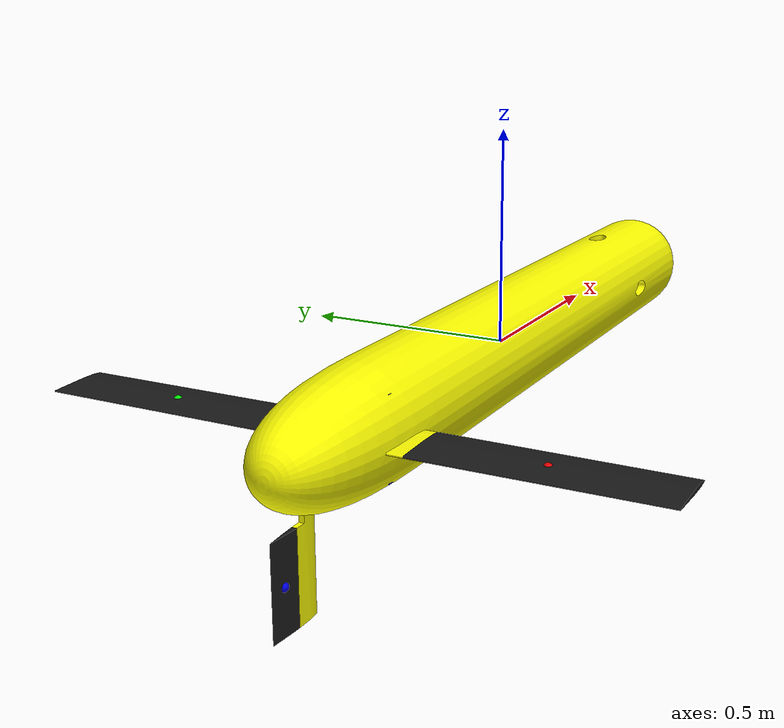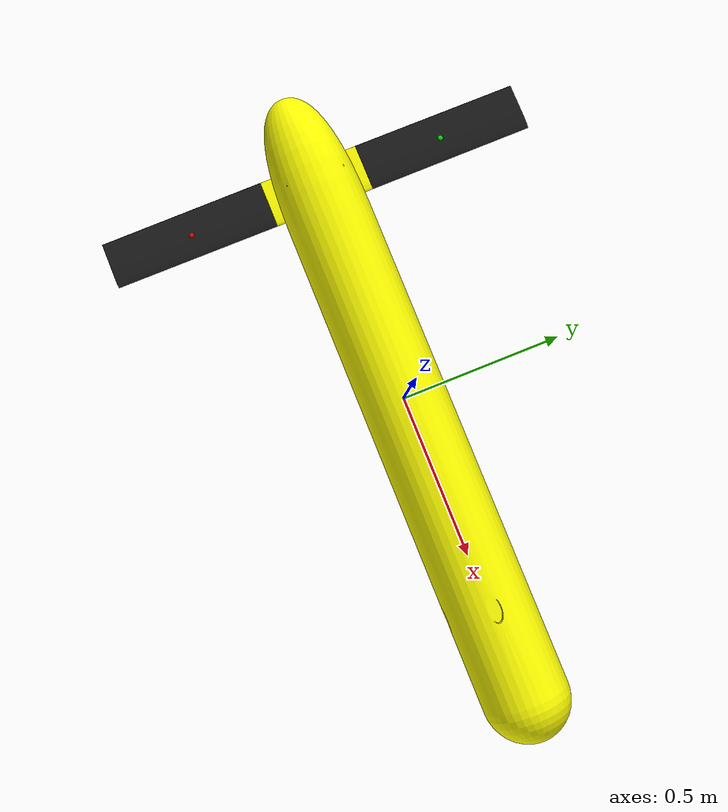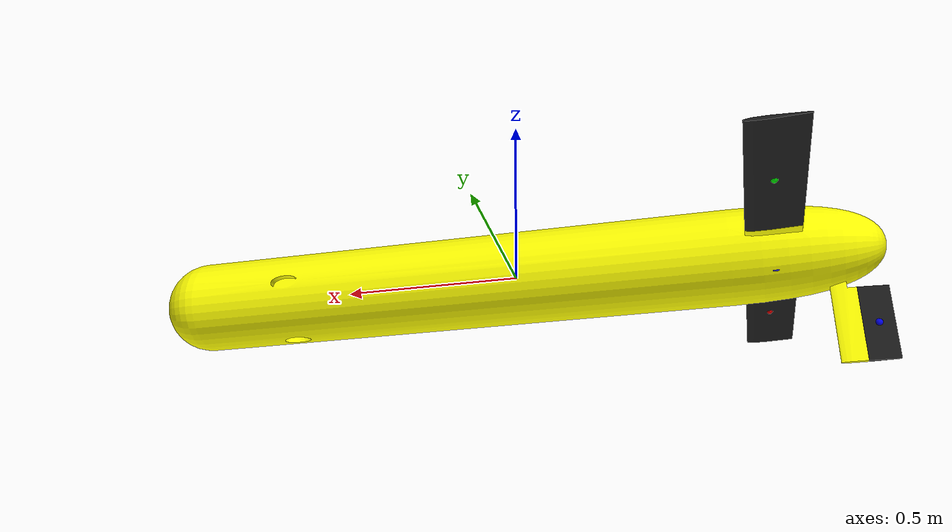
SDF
<?xml version="1.0"?>
<sdf version="1.7">
  <model name="glider_nautilus">

    <static>false</static>

    <!-- BASE LINK -->

    <link name="base_link">
      <inertial>

        <pose>0.066 0 0.043 0 0 0</pose>

        <inertia>
          <ixx>0.569665165</ixx>
          <ixy>0.014586839</ixy>
          <ixz>-0.135434148</ixz>
          <iyy>7.792</iyy>
          <iyz>0.003389589</iyz>
          <izz>7.738</izz>
        </inertia>

        <!-- Added mass: analytic estimate. -->
        <fluid_added_mass>
          <xx>5.30023995</xx>
          <yy>98.529516</yy>
          <zz>110.543023</zz>
          <pp>1.46943124</pp>
          <qq>20.2676439</qq>
          <rr>16.1139805</rr>
        </fluid_added_mass>

        <!-- Mass from the Technical_Details spreadsheet; excludes
             movable ACU masses and the oil mass. -->

        <mass>44.637</mass>

      </inertial>

      <visual name="base_link_visual">
        <pose>0 0 0 0 0 0</pose>
        <geometry>
          <mesh>
            <uri>model://meshes/glider_nautilus/nautilus_glider_nw_v04.dae</uri>
          </mesh>
        </geometry>
        <material>
          <ambient>0.7 0. 0 0.5</ambient>
          <diffuse>1 1 0 1</diffuse>
          <specular>0.7 0.7 0 0.5</specular>
        </material>
      </visual>

      <collision name="base_link_collision">
        <pose>0.0 0 0 0 0 0</pose>
        <geometry>
          <box>
            <!-- x y and z dimensions of the box (refers to base_link coordinates) -->
            <size>1.007723 0.232517 0.232517</size>
          </box>
        </geometry>
      </collision>

      <!-- Box visualising where the bouyant volume of the
           hull is. Not functional, simply an optional sanity check.
           Uncomment to show. -->

    </link>

    <plugin
      filename="gz-sim-hydrodynamics-system"
      name="gz::sim::systems::Hydrodynamics">
      <link_name>base_link</link_name>
      <!-- Fresh water (2026-06-24 lake test environment). -->
      <water_density>1000</water_density>
      <xDotU>0</xDotU>
      <yDotV>0</yDotV>
      <zDotW>0</zDotW>
      <kDotP>0</kDotP>
      <mDotQ>0</mDotQ>
      <nDotR>0</nDotR>

      <!-- Linear drag diagonals. zW: lake-fitted (2026-06-24 heave
           calibration). xU/yV/kP/mQ/nR: strip-theory estimates. -->
      <xU>-108</xU>
      <yV>-8</yV>
      <zW>-52.2</zW>
      <kP>-13</kP>
      <mQ>-32</mQ>
      <nR>-20</nR>
      <!-- cross terms -->

      <!-- Quadratic drag diagonals. zWabsW: lake-fitted with zW
           (2026-06-24 heave calibration); the rest are zero. -->
      <xUabsU>0</xUabsU>
      <yVabsV>0</yVabsV>
      <zWabsW>-436.7</zWabsW>
      <kPabsP>0</kPabsP>
      <mQabsQ>0</mQabsQ>
      <nRabsR>0</nRabsR>
    </plugin>

    <plugin
      filename="HeaveAugmentPlugin"
      name="dave_gz_model_plugins::HeaveAugmentPlugin">
      <link_name>base_link</link_name>
      <zW>-52.2</zW>
      <zWabsW>-436.7</zWabsW>
      <ascent_drag_relief>
        <retain_fraction>0.66</retain_fraction>
        <min_ascent_speed>0.01</min_ascent_speed>
      </ascent_drag_relief>
      <entry_momentum>
        <peak_speed>0.205</peak_speed>
        <rise_time>20</rise_time>
        <decay_time>25</decay_time>
        <trigger_depth>0.3</trigger_depth>
        <trigger_speed>0.03</trigger_speed>
        <trigger_hold>2</trigger_hold>
        <rearm_speed>0.01</rearm_speed>
        <rearm_hold>5</rearm_hold>
        <servo_gain>1000</servo_gain>
        <max_force>60</max_force>
      </entry_momentum>
    </plugin>

    <!-- TRIMMING BOW -->

    <!-- A rigidly attached link providing the additional buoyancy
         or mass needed to make the glider float correctly -->

    <joint name="trimming_bow_joint" type="fixed">
      <pose>0.65 0 0 0 0 0</pose>
      <parent>base_link</parent>
      <child>trimming_bow</child>
    </joint>

    <link name="trimming_bow">

      <pose>0.65 0 0 0 0 0</pose>

      <inertial>
        <mass>3.157</mass>
      </inertial>

      <collision name="bow_trimming_foam_collision">
        <pose>0 0 0 0 0 0</pose>
        <geometry>
          <box>
            <size>0.065 0.18 0.18</size>
          </box>
        </geometry>
      </collision>

      <visual name="bow_trimming_foam_visual">
        <geometry>
          <box>
            <size>0.065 0.15 0.15</size>
          </box>
        </geometry>
        <material>
          <ambient>0 0 1 0.8</ambient>
          <diffuse>0 0 1 0.8</diffuse>
          <specular>0 0 1 0.8</specular>
        </material>
      </visual>

    </link>

    <!-- TRIMMING STERN -->

    <!-- A rigidly attached link providing the additional buoyancy
         or mass needed to make the glider float correctly. Uncomment
         and add mass / a collision geometry to activate. -->

    <joint name="trimming_stern_joint" type="fixed">
      <pose>-0.7 0 0 0 0 0</pose>
      <parent>base_link</parent>
      <child>trimming_stern</child>
    </joint>

    <link name="trimming_stern">

      <collision name="stern_trimming_foam_collision">
        <geometry>
          <box>
            <size>0.015 0.18 0.18</size>
          </box>
        </geometry>
      </collision>

      <pose>-0.7 0 0 0 0 0</pose>

      <inertial>
        <!-- Stern half of the pitch-trim pair — see the mass-budget
             note on trimming_bow. -->
        <mass>0.2765</mass>
      </inertial>

      <visual name="stern_trimming_foam_visual">
        <geometry>
          <box>
            <size>0.015 0.18 0.18</size>
          </box>
        </geometry>
        <material>
          <ambient>0 0 1 0.8</ambient>
          <diffuse>0 0 1 0.8</diffuse>
          <specular>0 0 1 0.8</specular>
        </material>
      </visual>

    </link>

    <!-- LEFT FIN -->

    <link name="LeftFin_link">
      <!-- Frame for aerodynamic forces of left wing.
           For now simply rest at base link -->

      <visual name="LeftFin_visual">
        <pose>0 0 0 0 0 0</pose>
        <geometry>
          <mesh>
            <uri>model://meshes/glider_nautilus/nautilus_glider_wing_l_v04.dae</uri>
          </mesh>
        </geometry>
        <material>
          <ambient>0.1 0.1 0.1 0.9</ambient>
          <diffuse>0.1 0.1 0.1 1</diffuse>
          <specular>0 0 0 0.9</specular>
        </material>
      </visual>

      <!-- The following visual element is for a sanity check on the
           centre of pressure passed to the lift drag plugin. Insert
           the same position in the pose tag. -->
      <visual name="centre_of_pressure_marker">
        <pose>-0.7 -0.408 0 0 0 0</pose>
        <geometry>
          <sphere>
            <radius>0.01</radius>
          </sphere>
        </geometry>
        <material>
          <ambient>0.9 0 0 0.9</ambient>
          <diffuse>0.9 0 0 0.9</diffuse>
          <specular>0 0 0 0.9</specular>
        </material>
      </visual>

    </link>

    <joint name="LeftFin_joint" type="fixed">
      <pose>0 0 0 0 0 0</pose>
      <parent>base_link</parent>
      <child>LeftFin_link</child>
    </joint>

    <plugin
      filename="gz-sim-lift-drag-system"
      name="gz::sim::systems::LiftDrag">
      <air_density>1000</air_density>
      <cla>4.13</cla>
      <cla_stall>-1.1</cla_stall>
      <cda>0.2</cda>
      <cda_stall>0.03</cda_stall>
      <alpha_stall>0.17</alpha_stall>
      <a0>0</a0>
      <area>0.0725</area>
      <upward>0 0 -1</upward>
      <forward>1 0 0</forward>
      <link_name>LeftFin_link</link_name>
      <!-- cp determines the centre of pressure in the link frame,
           i.e. wher the aerodynamic forces are applied -->
      <cp>-0.7 -0.408 0</cp>
    </plugin>

    <!-- RIGHT FIN -->

    <link name="RightFin_link">

      <visual name="RightFin_visual">
        <pose>0 0 0 0 0 0</pose>
        <geometry>
          <mesh>
            <uri>model://meshes/glider_nautilus/nautilus_glider_wing_r_v04.dae</uri>
          </mesh>
        </geometry>
        <material>
          <ambient>0.1 0.1 0.1 0.9</ambient>
          <diffuse>0.1 0.1 0.1 1</diffuse>
          <specular>0 0 0 0.9</specular>
        </material>
      </visual>

      <!-- The following visual element is for a sanity check on the
           centre of pressure passed to the lift drag plugin. Insert
           the same position in the pose tag. -->
      <visual name="centre_of_pressure_marker">
        <pose>-0.7 0.408  0 0 0 0</pose>
        <geometry>
          <sphere>
            <radius>0.01</radius>
          </sphere>
        </geometry>
        <material>
          <ambient>0 0.9 0 0.9</ambient>
          <diffuse>0 0.9 0 0.9</diffuse>
          <specular>0 0 0 0.9</specular>
        </material>
      </visual>

    </link>

    <joint name="RightFin_joint" type="fixed">
      <pose>0 0 0 0 0 0</pose>
      <parent>base_link</parent>
      <child>RightFin_link</child>
    </joint>

    <plugin
      filename="gz-sim-lift-drag-system"
      name="gz::sim::systems::LiftDrag">
      <air_density>1000</air_density>
      <cla>4.13</cla>
      <cla_stall>-1.1</cla_stall>
      <cda>0.2</cda>
      <cda_stall>0.03</cda_stall>
      <alpha_stall>0.17</alpha_stall>
      <a0>0</a0>
      <area>0.0725</area>
      <upward>0 0 -1</upward>
      <forward>1 0 0</forward>
      <link_name>RightFin_link</link_name>
      <!-- cp determines the centre of pressure in the link frame,
           i.e. wher the aerodynamic forces are applied -->
      <cp>-0.7 0.408  0</cp>
    </plugin>

    <!-- TOP RUDDER -->

    <!-- Top rudder should be movable. First define this joint that
         the rudder's axis of rotation passes through -->

    <joint name="TopRudder_joint" type="fixed">
      <pose relative_to="base_link">-0.899156 0 -0.119 0 0 0</pose>
      <parent>base_link</parent>
      <child>TopRudder_link</child>
    </joint>

    <link name="TopRudder_link">

      <!-- Link (ie rudder body) has its coordinate system right
           on the rudder joint -->

      <pose relative_to="TopRudder_joint">0 0 0 0 0 0</pose>

      <!-- Integrates the mesh files of the rudder -->
      <visual name="Rudder_visual">
        <geometry>
          <mesh>
            <uri>model://meshes/glider_nautilus/nautilus_glider_rudder_v05.dae</uri>
          </mesh>
        </geometry>
        <material>
          <ambient>0.1 0.1 0.1 0.9</ambient>
          <diffuse>0.1 0.1 0.1 1</diffuse>
          <specular>0 0 0 0.9</specular>
        </material>
      </visual>

      <!-- The following visual element is for a sanity check on the
           centre of pressure passed to the lift drag plugin. Insert
           the same position in the pose tag. -->
      <visual name="centre_of_pressure_marker">
        <!-- Pose of the 'centre of pressure' in the local coordinates
             of the TopRudder_link, also a NED coordinate system -->
        <pose relative_to="TopRudder_link">-0.04 0 -0.1 0 0 0</pose>
        <geometry>
          <sphere>
            <radius>0.01</radius>
          </sphere>
        </geometry>
        <material>
          <ambient>0 0 0.9 0.9</ambient>
          <diffuse>0 0 0.9 0.9</diffuse>
          <specular>0 0 0 0.9</specular>
        </material>
      </visual>

    </link>

    <!-- Started to implement a movable rudder -->

    <!-- 0.5 was the initial set point of the PID position
     controller for the rudder -->

    <plugin
      filename="gz-sim-joint-state-publisher-system"
      name="gz::sim::systems::JointStatePublisher">
      <joint_name>TopRudder_joint</joint_name>
      <update_rate>2</update_rate>
    </plugin>

    <plugin
      filename="gz-sim-lift-drag-system"
      name="gz::sim::systems::LiftDrag">
      <air_density>1000</air_density>
      <cla>4.13</cla>
      <cla_stall>-1.1</cla_stall>
      <cda>0.2</cda>
      <cda_stall>0.03</cda_stall>
      <alpha_stall>0.17</alpha_stall>
      <a0>0</a0>
      <area>0.0244</area>
      <upward>0 1 0</upward>
      <forward>1 0 0</forward>
      <link_name>TopRudder_link</link_name>
      <cp>-0.04 0 -0.1</cp>
    </plugin>

    <!-- BLADDER -->

    <link name="bladder_link">
      <!-- Pose of bladder link in base link frame-->
      <pose>0.6 0 0 0 0 0</pose>
      <!-- Explicit mass (was the implicit SDF default of 1.0 kg); the
           second centerline trim knob — see the mass-budget note on
           trimming_bow. -->
      <inertial>
        <mass>0.001</mass>
      </inertial>
      <visual name="bladder_link_visual">
        <geometry>
          <sphere>
            <radius>0.05</radius>
          </sphere>
        </geometry>
        <material>
          <ambient>0 0 1 1</ambient>
          <diffuse>0 0 1 0.5</diffuse>
          <specular>0 0 1 0.5</specular>
        </material>
      </visual>
    </link>

    <joint name="bladder_joint" type="fixed">
      <pose>0 0 0 0 0 0</pose>
      <parent>base_link</parent>
      <child>bladder_link</child>
    </joint>

    <!-- OIL MASS -->

    <link name="oil_weight_link">
      <!--Oil positioned in the middle between the
      tank and the bladder. Static. Position in base_link coord-->
      <pose>0.4125 0 0.018 0 0 0</pose>
      <visual name="oil_weight_marker">
        <pose>0 0 0 0 0 0</pose>
        <geometry>
          <sphere>
            <radius>0.01</radius>
          </sphere>
        </geometry>
      </visual>
      <inertial>
        <mass>2.1825</mass>
      </inertial>
    </link>

    <joint name="oil_weigth_joint" type="fixed">
      <pose>0 0 0 0 0 0</pose>
      <parent>base_link</parent>
      <child>oil_weight_link</child>
    </joint>

    <plugin
      filename="gz-sim-buoyancy-engine-system"
      name="gz::sim::systems::BuoyancyEngine">
      <link_name>bladder_link</link_name>
      <max_inflation_rate>0.0001</max_inflation_rate>
      <min_volume>0.0</min_volume>
      <max_volume>0.0025</max_volume>
      <neutral_volume>0.0</neutral_volume>
      <!-- Spawn slightly above the lake-calibrated neutral bladder
           volume (2.097e-3 m^3) so the vehicle floats gently at rest,
           mirroring the real pre-dive surface float. -->
      <default_volume>0.0022</default_volume>
      <fluid_density>1000</fluid_density>
      <surface>0</surface>
      <namespace>glider_nautilus</namespace>
    </plugin>

    <!-- IMU -->

    <link name="imu_link">
      <inertial>
        <pose>0 0 0 0 0 0</pose>
        <mass>0.015</mass>
        <inertia>
          <ixx>0.00001</ixx>
          <ixy>0.0</ixy>
          <ixz>0.0</ixz>
          <iyy>0.00001</iyy>
          <iyz>0.0</iyz>
          <izz>0.00001</izz>
        </inertia>
      </inertial>
      <sensor name="imu_sensor" type="imu">
        <always_on>true</always_on>
        <update_rate>50.0</update_rate>
        <topic>/model/glider_nautilus/imu</topic>
      </sensor>
    </link>

    <joint name="imu_joint" type="fixed">
      <pose>0 0 0 0 0 0</pose>
      <parent>base_link</parent>
      <child>imu_link</child>
    </joint>

    <plugin
      filename="gz-sim-imu-system"
      name="gz::sim::systems::Imu">
    </plugin>

    <!-- BATTERY -->

    <link name='battery_link'>
      <inertial>
        <pose>0 0 0 0 0 0</pose>
        <mass>0.001</mass>
        <inertia>
          <ixx>1e-05</ixx>
          <ixy>0</ixy>
          <ixz>0</ixz>
          <iyy>1e-05</iyy>
          <iyz>0</iyz>
          <izz>1e-05</izz>
        </inertia>
      </inertial>
      <battery name='battery'>
        <voltage>4.2</voltage>
      </battery>
    </link>

    <joint name='battery_joint' type='fixed'>
      <pose>0 0 0 0 0 0</pose>
      <parent>base_link</parent>
      <child>battery_link</child>
    </joint>

    <!-- ACU -->

    <!-- PITCH ACU -->

    <link name='acu_tilt_link'>

      <!-- ACU removed from sim: this mass is now static, parked at the
           mid-point of the former prismatic travel ([-0.1195, 0] m) -> x = -0.385. -->
      <pose>-0.385 0 -0.0438 0 0 0</pose>

      <inertial>
        <mass>1.83</mass>
        <inertia>
          <ixx>0.05</ixx>
          <ixy>0</ixy>
          <ixz>0</ixz>
          <iyy>0.05</iyy>
          <iyz>0</iyz>
          <izz>0.05</izz>
        </inertia>
      </inertial>

      <!-- Marker for debugging pitch ACU mass position -->
      <visual name="CM_pitch_ACU_marker">
        <geometry>
          <sphere>
            <radius>0.01</radius>
          </sphere>
        </geometry>
        <material>
          <ambient>0.9 0 0 0.9</ambient>
          <diffuse>0.9 0 0 0.9</diffuse>
          <specular>0 0 0 0.9</specular>
        </material>
      </visual>
    </link>

    <joint name='acu_tilt_joint' type='fixed'>
      <!-- ACU pitch mass-shifter removed: joint fixed at the mid-travel pose. -->
      <pose>-0.385 0 -0.0438 0 0 0</pose>
      <parent>base_link</parent>
      <child>acu_tilt_link</child>
    </joint>

    <!-- ROLL ACU -->

    <link name='acu_roll_link'>
      <pose>-0.428 0 0.034 0 0 0</pose>

      <inertial>
        <!-- Pose of the centre of mass relative to the pivot.
             From Onshape 22.04. -->
        <pose>0 0 0.027 0 0 0</pose>
        <!-- Mass of roll weight from spreadsheet as of 22.04. -->
        <mass>4.069</mass>
        <inertia>
          <ixx>0.05</ixx>
          <ixy>0</ixy>
          <ixz>0</ixz>
          <iyy>0.05</iyy>
          <iyz>0</iyz>
          <izz>0.05</izz>
        </inertia>
      </inertial>
      <battery name='battery_acu_roll'>
        <voltage>4.2</voltage>
      </battery>

      <!-- Marker for debugging roll ACU mass position -->
      <visual name="CM_roll_ACU_marker">
        <pose>0 0 0.027 0 0 0</pose>
        <geometry>
          <sphere>
            <radius>0.01</radius>
          </sphere>
        </geometry>
        <material>
          <ambient>0.9 0 0 0.9</ambient>
          <diffuse>0.9 0 0 0.9</diffuse>
          <specular>0 0 0 0.9</specular>
        </material>
      </visual>

    </link>

    <joint name='acu_roll_joint' type='fixed'>
      <!-- ACU roll mass removed: joint fixed at the neutral (0 rad) pose. -->
      <pose>-0.428 0 0.034 0 0 0</pose> <!--Where the pivot is-->
      <parent>base_link</parent>
      <child>acu_roll_link</child>
    </joint>

    <!-- ACU removed: the pitch/roll masses above are now static (fixed joints);
         their JointPositionController plugins are gone. The vehicle's only
         actuator is the BCU BuoyancyEngine. -->

    <plugin
      filename="gz-sim-linearbatteryplugin-system"
      name="gz::sim::systems::LinearBatteryPlugin">
      <battery_name>battery</battery_name>
      <voltage>4.2</voltage>
      <open_circuit_voltage_constant_coef>3.7</open_circuit_voltage_constant_coef>
      <open_circuit_voltage_linear_coef>-3.1424</open_circuit_voltage_linear_coef>
      <initial_charge>4.32</initial_charge>
      <capacity>4.8</capacity>
      <resistance>0.002</resistance>
      <smooth_current_tau>1.9499</smooth_current_tau>
      <enable_recharge>false</enable_recharge>
      <power_load>10</power_load>
      <start_on_motion>true</start_on_motion>
    </plugin>

    <!-- NAVSAT -->

    <link name="navsat_link">
      <inertial>
        <pose>0 0 0 0 0 0</pose>
        <mass>0.001</mass>
        <inertia>
          <ixx>0.00001</ixx>
          <ixy>0.0</ixy>
          <ixz>0.0</ixz>
          <iyy>0.00001</iyy>
          <iyz>0.0</iyz>
          <izz>0.00001</izz>
        </inertia>
      </inertial>

      <sensor name="navsat_sensor" type="navsat">
        <always_on>true</always_on>
        <update_rate>30.0</update_rate>
        <topic>/model/glider_nautilus/navsat</topic>
      </sensor>
    </link>

    <joint name="navsat_joint" type="fixed">
      <pose>0 0 0 0 0 0</pose>
      <parent>base_link</parent>
      <child>navsat_link</child>
    </joint>

    <plugin
      filename="gz-sim-navsat-system"
      name="gz::sim::systems::NavSat">
    </plugin>

    <!-- OTHER PLUGINS -->

    <plugin
      filename="gz-sim-odometry-publisher-system"
      name="gz::sim::systems::OdometryPublisher">
      <odom_frame>map</odom_frame>
      <robot_base_frame>base_link</robot_base_frame>
      <dimensions>3</dimensions>
      <odom_publish_frequency>100</odom_publish_frequency>
    </plugin>

    <plugin
      filename="gz-sim-joint-state-publisher-system"
      name="gz::sim::systems::JointStatePublisher">
    </plugin>

    <!-- Sea Pressure Sensor Plugin -->
    <plugin
      filename="sea_pressure_sensor"
      name=" dave_gz_sensor_plugins::SubseaPressureSensorPlugin">
      <namespace>glider_nautilus</namespace>
      <topic>sea_pressure</topic>
      <update_rate>10</update_rate>
      <noise_sigma>3.0</noise_sigma>
      <estimate_depth_on>true</estimate_depth_on>
      <standard_pressure>101.325</standard_pressure>
      <kPa_per_meter>9.80638</kPa_per_meter>
    </plugin>

  </model>
</sdf>
